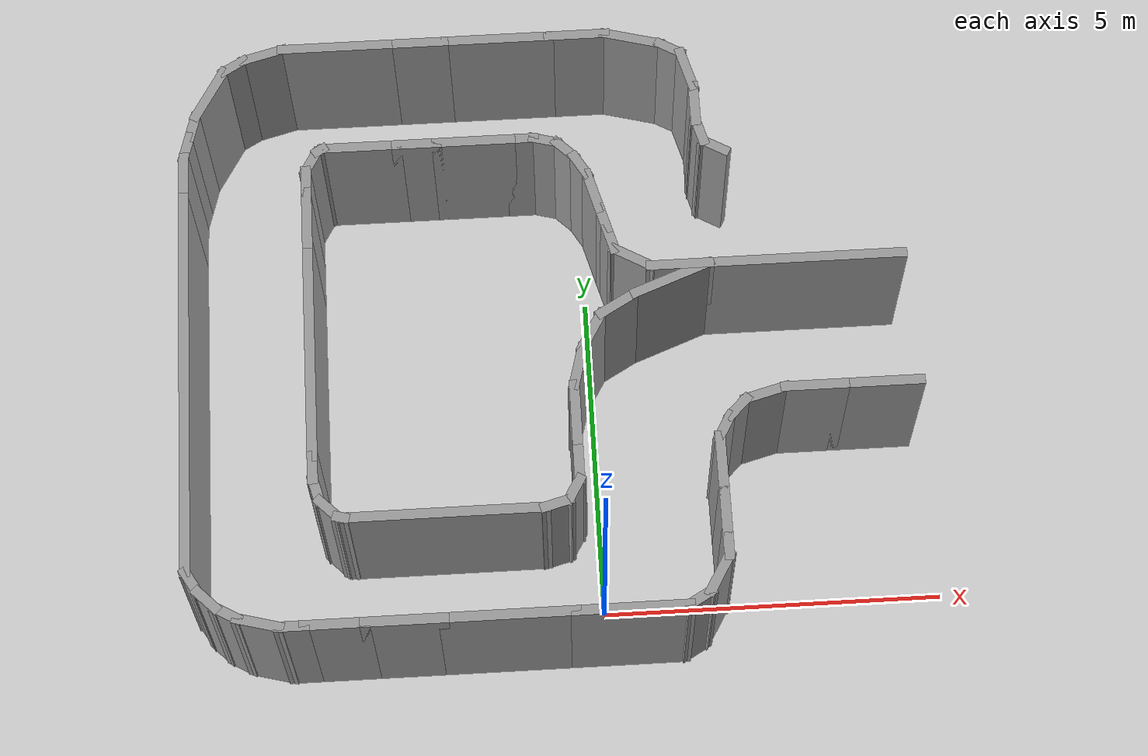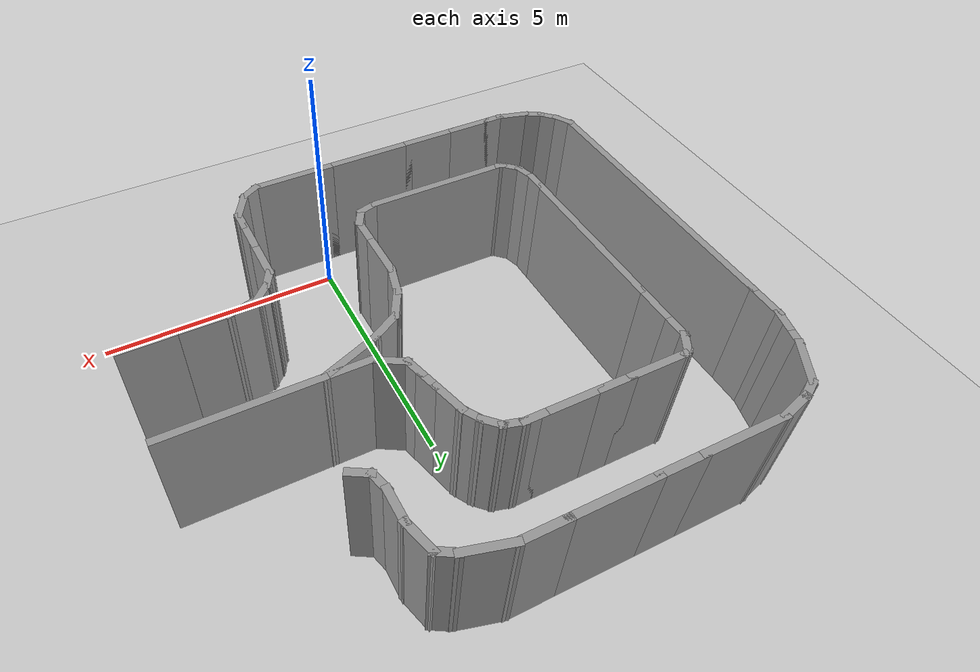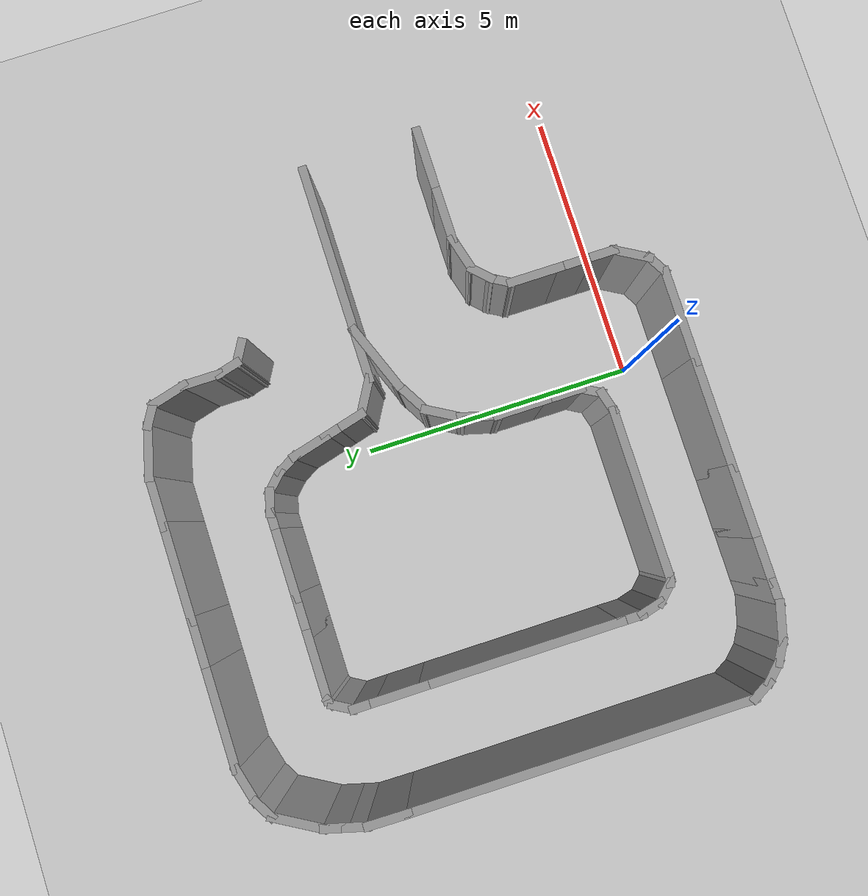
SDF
<sdf version="1.7">
 <world name="default">
  <model name="ground_plane">
   <static>1</static>
   <link name="link">
    <collision name="collision">
     <geometry><plane><normal>0 0 1</normal><size>100 100</size></plane></geometry>
     <surface><friction><ode><mu>100</mu><mu2>50</mu2></ode></friction></surface>
    </collision>
    <visual name="visual">
     <cast_shadows>0</cast_shadows>
     <geometry><plane><normal>0 0 1</normal><size>100 100</size></plane></geometry>
     <material>
      <script><uri>file://media/materials/scripts/gazebo.material</uri><name>Gazebo/Grey</name></script>
     </material>
    </visual>
   </link>
  </model>
  <model name="f1track">
   <pose>5.08169 4.60553 0 0 -0 0</pose>
   <link name="Wall_1">
    <collision name="Wall_1_Collision">
     <geometry><box><size>6 0.15 2.5</size></box></geometry>
     <pose>0 0 1.25 0 -0 0</pose>
    </collision>
    <visual name="Wall_1_Visual">
     <pose>0 0 1.25 0 -0 0</pose>
     <geometry><box><size>6 0.15 2.5</size></box></geometry>
     <material>
      <script><uri>file://media/materials/scripts/gazebo.material</uri><name>Gazebo/Grey</name></script>
      <ambient>1 1 1 1</ambient>
     </material>
     <meta><layer>0</layer></meta>
    </visual>
    <pose>-10.9896 -1.50866 0 0 -0 -1.5708</pose>
   </link>
   <link name="Wall_10">
    <collision name="Wall_10_Collision">
     <geometry><box><size>1.75 0.15 2.5</size></box></geometry>
     <pose>0 0 1.25 0 -0 0</pose>
    </collision>
    <visual name="Wall_10_Visual">
     <pose>0 0 1.25 0 -0 0</pose>
     <geometry><box><size>1.75 0.15 2.5</size></box></geometry>
     <material>
      <script><uri>file://media/materials/scripts/gazebo.material</uri><name>Gazebo/Grey</name></script>
      <ambient>1 1 1 1</ambient>
     </material>
     <meta><layer>0</layer></meta>
    </visual>
    <pose>-4.73447 -5.31455 0 0 -0 0</pose>
   </link>
   <link name="Wall_11">
    <collision name="Wall_11_Collision">
     <geometry><box><size>0.5 0.15 2.5</size></box></geometry>
     <pose>0 0 1.25 0 -0 0</pose>
    </collision>
    <visual name="Wall_11_Visual">
     <pose>0 0 1.25 0 -0 0</pose>
     <geometry><box><size>0.5 0.15 2.5</size></box></geometry>
     <material>
      <script><uri>file://media/materials/scripts/gazebo.material</uri><name>Gazebo/Grey</name></script>
      <ambient>1 1 1 1</ambient>
     </material>
     <meta><layer>0</layer></meta>
    </visual>
    <pose>-3.78292 -5.22705 0 0 -0 0.523599</pose>
   </link>
   <link name="Wall_12">
    <collision name="Wall_12_Collision">
     <geometry><box><size>0.75 0.15 2.5</size></box></geometry>
     <pose>0 0 1.25 0 -0 0</pose>
    </collision>
    <visual name="Wall_12_Visual">
     <pose>0 0 1.25 0 -0 0</pose>
     <geometry><box><size>0.75 0.15 2.5</size></box></geometry>
     <material>
      <script><uri>file://media/materials/scripts/gazebo.material</uri><name>Gazebo/Grey</name></script>
      <ambient>1 1 1 1</ambient>
     </material>
     <meta><layer>0</layer></meta>
    </visual>
    <pose>-3.48137 -4.87974 0 0 -0 1.0472</pose>
   </link>
   <link name="Wall_13">
    <collision name="Wall_13_Collision">
     <geometry><box><size>0.5 0.15 2.5</size></box></geometry>
     <pose>0 0 1.25 0 -0 0</pose>
    </collision>
    <visual name="Wall_13_Visual">
     <pose>0 0 1.25 0 -0 0</pose>
     <geometry><box><size>0.5 0.15 2.5</size></box></geometry>
     <material>
      <script><uri>file://media/materials/scripts/gazebo.material</uri><name>Gazebo/Grey</name></script>
      <ambient>1 1 1 1</ambient>
     </material>
     <meta><layer>0</layer></meta>
    </visual>
    <pose>-3.33137 -4.44493 0 0 -0 1.5708</pose>
   </link>
   <link name="Wall_131">
    <collision name="Wall_131_Collision">
     <geometry><box><size>3.5 0.15 2.5</size></box></geometry>
     <pose>0 0 1.25 0 -0 0</pose>
    </collision>
    <visual name="Wall_131_Visual">
     <pose>0 0 1.25 0 -0 0</pose>
     <geometry><box><size>3.5 0.15 2.5</size></box></geometry>
     <material>
      <script><uri>file://media/materials/scripts/gazebo.material</uri><name>Gazebo/Grey</name></script>
      <ambient>1 1 1 1</ambient>
     </material>
     <meta><layer>0</layer></meta>
    </visual>
    <pose>-9.16786 -1.11959 0 0 -0 -1.5708</pose>
   </link>
   <link name="Wall_132">
    <collision name="Wall_132_Collision">
     <geometry><box><size>0.5 0.15 2.5</size></box></geometry>
     <pose>0 0 1.25 0 -0 0</pose>
    </collision>
    <visual name="Wall_132_Visual">
     <pose>0 0 1.25 0 -0 0</pose>
     <geometry><box><size>0.5 0.15 2.5</size></box></geometry>
     <material>
      <script><uri>file://media/materials/scripts/gazebo.material</uri><name>Gazebo/Grey</name></script>
      <ambient>1 1 1 1</ambient>
     </material>
     <meta><layer>0</layer></meta>
    </visual>
    <pose>-9.16786 -2.96959 0 0 -0 -1.5708</pose>
   </link>
   <link name="Wall_133">
    <collision name="Wall_133_Collision">
     <geometry><box><size>0.5 0.15 2.5</size></box></geometry>
     <pose>0 0 1.25 0 -0 0</pose>
    </collision>
    <visual name="Wall_133_Visual">
     <pose>0 0 1.25 0 -0 0</pose>
     <geometry><box><size>0.5 0.15 2.5</size></box></geometry>
     <material>
      <script><uri>file://media/materials/scripts/gazebo.material</uri><name>Gazebo/Grey</name></script>
      <ambient>1 1 1 1</ambient>
     </material>
     <meta><layer>0</layer></meta>
    </visual>
    <pose>-9.12257 -3.31363 0 0 -0 -1.309</pose>
   </link>
   <link name="Wall_134">
    <collision name="Wall_134_Collision">
     <geometry><box><size>0.5 0.15 2.5</size></box></geometry>
     <pose>0 0 1.25 0 -0 0</pose>
    </collision>
    <visual name="Wall_134_Visual">
     <pose>0 0 1.25 0 -0 0</pose>
     <geometry><box><size>0.5 0.15 2.5</size></box></geometry>
     <material>
      <script><uri>file://media/materials/scripts/gazebo.material</uri><name>Gazebo/Grey</name></script>
      <ambient>1 1 1 1</ambient>
     </material>
     <meta><layer>0</layer></meta>
    </visual>
    <pose>-8.95353 -3.60641 0 0 -0 -0.785398</pose>
   </link>
   <link name="Wall_135">
    <collision name="Wall_135_Collision">
     <geometry><box><size>0.25 0.15 2.5</size></box></geometry>
     <pose>0 0 1.25 0 -0 0</pose>
    </collision>
    <visual name="Wall_135_Visual">
     <pose>0 0 1.25 0 -0 0</pose>
     <geometry><box><size>0.25 0.15 2.5</size></box></geometry>
     <material>
      <script><uri>file://media/materials/scripts/gazebo.material</uri><name>Gazebo/Grey</name></script>
      <ambient>1 1 1 1</ambient>
     </material>
     <meta><layer>0</layer></meta>
    </visual>
    <pose>-8.78149 -3.74309 0 0 -0 -0.261799</pose>
   </link>
   <link name="Wall_136">
    <collision name="Wall_136_Collision">
     <geometry><box><size>3 0.15 2.5</size></box></geometry>
     <pose>0 0 1.25 0 -0 0</pose>
    </collision>
    <visual name="Wall_136_Visual">
     <pose>0 0 1.25 0 -0 0</pose>
     <geometry><box><size>3 0.15 2.5</size></box></geometry>
     <material>
      <script><uri>file://media/materials/scripts/gazebo.material</uri><name>Gazebo/Grey</name></script>
      <ambient>1 1 1 1</ambient>
     </material>
     <meta><layer>0</layer></meta>
    </visual>
    <pose>-7.3082 -3.75603 0 0 -0 0</pose>
   </link>
   <link name="Wall_137">
    <collision name="Wall_137_Collision">
     <geometry><box><size>0.5 0.15 2.5</size></box></geometry>
     <pose>0 0 1.25 0 -0 0</pose>
    </collision>
    <visual name="Wall_137_Visual">
     <pose>0 0 1.25 0 -0 0</pose>
     <geometry><box><size>0.5 0.15 2.5</size></box></geometry>
     <material>
      <script><uri>file://media/materials/scripts/gazebo.material</uri><name>Gazebo/Grey</name></script>
      <ambient>1 1 1 1</ambient>
     </material>
     <meta><layer>0</layer></meta>
    </visual>
    <pose>-5.71416 -3.71074 0 0 -0 0.261799</pose>
   </link>
   <link name="Wall_138">
    <collision name="Wall_138_Collision">
     <geometry><box><size>0.5 0.15 2.5</size></box></geometry>
     <pose>0 0 1.25 0 -0 0</pose>
    </collision>
    <visual name="Wall_138_Visual">
     <pose>0 0 1.25 0 -0 0</pose>
     <geometry><box><size>0.5 0.15 2.5</size></box></geometry>
     <material>
      <script><uri>file://media/materials/scripts/gazebo.material</uri><name>Gazebo/Grey</name></script>
      <ambient>1 1 1 1</ambient>
     </material>
     <meta><layer>0</layer></meta>
    </visual>
    <pose>-5.45762 -3.51389 0 0 -0 1.0472</pose>
   </link>
   <link name="Wall_139">
    <collision name="Wall_139_Collision">
     <geometry><box><size>0.75 0.15 2.5</size></box></geometry>
     <pose>0 0 1.25 0 -0 0</pose>
    </collision>
    <visual name="Wall_139_Visual">
     <pose>0 0 1.25 0 -0 0</pose>
     <geometry><box><size>0.75 0.15 2.5</size></box></geometry>
     <material>
      <script><uri>file://media/materials/scripts/gazebo.material</uri><name>Gazebo/Grey</name></script>
      <ambient>1 1 1 1</ambient>
     </material>
     <meta><layer>0</layer></meta>
    </visual>
    <pose>-5.37012 -3.06234 0 0 -0 1.5708</pose>
   </link>
   <link name="Wall_14">
    <collision name="Wall_14_Collision">
     <geometry><box><size>0.75 0.15 2.5</size></box></geometry>
     <pose>0 0 1.25 0 -0 0</pose>
    </collision>
    <visual name="Wall_14_Visual">
     <pose>0 0 1.25 0 -0 0</pose>
     <geometry><box><size>0.75 0.15 2.5</size></box></geometry>
     <material>
      <script><uri>file://media/materials/scripts/gazebo.material</uri><name>Gazebo/Grey</name></script>
      <ambient>1 1 1 1</ambient>
     </material>
     <meta><layer>0</layer></meta>
    </visual>
    <pose>-3.33137 -3.96993 0 0 -0 1.5708</pose>
   </link>
   <link name="Wall_140">
    <collision name="Wall_140_Collision">
     <geometry><box><size>1 0.15 2.5</size></box></geometry>
     <pose>0 0 1.25 0 -0 0</pose>
    </collision>
    <visual name="Wall_140_Visual">
     <pose>0 0 1.25 0 -0 0</pose>
     <geometry><box><size>1 0.15 2.5</size></box></geometry>
     <material>
      <script><uri>file://media/materials/scripts/gazebo.material</uri><name>Gazebo/Grey</name></script>
      <ambient>1 1 1 1</ambient>
     </material>
     <meta><layer>0</layer></meta>
    </visual>
    <pose>-5.37012 -2.33734 0 0 -0 1.5708</pose>
   </link>
   <link name="Wall_141">
    <collision name="Wall_141_Collision">
     <geometry><box><size>0.75 0.15 2.5</size></box></geometry>
     <pose>0 0 1.25 0 -0 0</pose>
    </collision>
    <visual name="Wall_141_Visual">
     <pose>0 0 1.25 0 -0 0</pose>
     <geometry><box><size>0.75 0.15 2.5</size></box></geometry>
     <material>
      <script><uri>file://media/materials/scripts/gazebo.material</uri><name>Gazebo/Grey</name></script>
      <ambient>1 1 1 1</ambient>
     </material>
     <meta><layer>0</layer></meta>
    </visual>
    <pose>-5.29248 -1.62256 0 0 -0 1.309</pose>
   </link>
   <link name="Wall_142">
    <collision name="Wall_142_Collision">
     <geometry><box><size>0.75 0.15 2.5</size></box></geometry>
     <pose>0 0 1.25 0 -0 0</pose>
    </collision>
    <visual name="Wall_142_Visual">
     <pose>0 0 1.25 0 -0 0</pose>
     <geometry><box><size>0.75 0.15 2.5</size></box></geometry>
     <material>
      <script><uri>file://media/materials/scripts/gazebo.material</uri><name>Gazebo/Grey</name></script>
      <ambient>1 1 1 1</ambient>
     </material>
     <meta><layer>0</layer></meta>
    </visual>
    <pose>-5.06483 -1.07297 0 0 -0 1.0472</pose>
   </link>
   <link name="Wall_143">
    <collision name="Wall_143_Collision">
     <geometry><box><size>0.75 0.15 2.5</size></box></geometry>
     <pose>0 0 1.25 0 -0 0</pose>
    </collision>
    <visual name="Wall_143_Visual">
     <pose>0 0 1.25 0 -0 0</pose>
     <geometry><box><size>0.75 0.15 2.5</size></box></geometry>
     <material>
      <script><uri>file://media/materials/scripts/gazebo.material</uri><name>Gazebo/Grey</name></script>
      <ambient>1 1 1 1</ambient>
     </material>
     <meta><layer>0</layer></meta>
    </visual>
    <pose>-4.65502 -0.663167 0 0 -0 0.523599</pose>
   </link>
   <link name="Wall_146">
    <collision name="Wall_146_Collision">
     <geometry><box><size>1.3344 0.15 2.5</size></box></geometry>
     <pose>0 0 1.25 0 -0 0</pose>
    </collision>
    <visual name="Wall_146_Visual">
     <pose>0 0 1.25 0 -0 0</pose>
     <geometry><box><size>1.3344 0.15 2.5</size></box></geometry>
     <material>
      <script><uri>file://media/materials/scripts/gazebo.material</uri><name>Gazebo/Grey</name></script>
      <ambient>1 1 1 1</ambient>
     </material>
     <meta><layer>0</layer></meta>
    </visual>
    <pose>-3.84242 -0.300767 0 0 -0 0.366835</pose>
   </link>
   <link name="Wall_15">
    <collision name="Wall_15_Collision">
     <geometry><box><size>1 0.15 2.5</size></box></geometry>
     <pose>0 0 1.25 0 -0 0</pose>
    </collision>
    <visual name="Wall_15_Visual">
     <pose>0 0 1.25 0 -0 0</pose>
     <geometry><box><size>1 0.15 2.5</size></box></geometry>
     <material>
      <script><uri>file://media/materials/scripts/gazebo.material</uri><name>Gazebo/Grey</name></script>
      <ambient>1 1 1 1</ambient>
     </material>
     <meta><layer>0</layer></meta>
    </visual>
    <pose>-3.33137 -3.24493 0 0 -0 1.5708</pose>
   </link>
   <link name="Wall_16">
    <collision name="Wall_16_Collision">
     <geometry><box><size>0.5 0.15 2.5</size></box></geometry>
     <pose>0 0 1.25 0 -0 0</pose>
    </collision>
    <visual name="Wall_16_Visual">
     <pose>0 0 1.25 0 -0 0</pose>
     <geometry><box><size>0.5 0.15 2.5</size></box></geometry>
     <material>
      <script><uri>file://media/materials/scripts/gazebo.material</uri><name>Gazebo/Grey</name></script>
      <ambient>1 1 1 1</ambient>
     </material>
     <meta><layer>0</layer></meta>
    </visual>
    <pose>-3.24387 -2.66838 0 0 -0 1.0472</pose>
   </link>
   <link name="Wall_17">
    <collision name="Wall_17_Collision">
     <geometry><box><size>0.5 0.15 2.5</size></box></geometry>
     <pose>0 0 1.25 0 -0 0</pose>
    </collision>
    <visual name="Wall_17_Visual">
     <pose>0 0 1.25 0 -0 0</pose>
     <geometry><box><size>0.5 0.15 2.5</size></box></geometry>
     <material>
      <script><uri>file://media/materials/scripts/gazebo.material</uri><name>Gazebo/Grey</name></script>
      <ambient>1 1 1 1</ambient>
     </material>
     <meta><layer>0</layer></meta>
    </visual>
    <pose>-3.03262 -2.39308 0 0 -0 0.785398</pose>
   </link>
   <link name="Wall_18">
    <collision name="Wall_18_Collision">
     <geometry><box><size>0.75 0.15 2.5</size></box></geometry>
     <pose>0 0 1.25 0 -0 0</pose>
    </collision>
    <visual name="Wall_18_Visual">
     <pose>0 0 1.25 0 -0 0</pose>
     <geometry><box><size>0.75 0.15 2.5</size></box></geometry>
     <material>
      <script><uri>file://media/materials/scripts/gazebo.material</uri><name>Gazebo/Grey</name></script>
      <ambient>1 1 1 1</ambient>
     </material>
     <meta><layer>0</layer></meta>
    </visual>
    <pose>-2.6191 -2.19169 0 0 -0 0.261799</pose>
   </link>
   <link name="Wall_19">
    <collision name="Wall_19_Collision">
     <geometry><box><size>1 0.15 2.5</size></box></geometry>
     <pose>0 0 1.25 0 -0 0</pose>
    </collision>
    <visual name="Wall_19_Visual">
     <pose>0 0 1.25 0 -0 0</pose>
     <geometry><box><size>1 0.15 2.5</size></box></geometry>
     <material>
      <script><uri>file://media/materials/scripts/gazebo.material</uri><name>Gazebo/Grey</name></script>
      <ambient>1 1 1 1</ambient>
     </material>
     <meta><layer>0</layer></meta>
    </visual>
    <pose>-1.90432 -2.11404 0 0 -0 0</pose>
   </link>
   <link name="Wall_2">
    <collision name="Wall_2_Collision">
     <geometry><box><size>0.5 0.15 2.5</size></box></geometry>
     <pose>0 0 1.25 0 -0 0</pose>
    </collision>
    <visual name="Wall_2_Visual">
     <pose>0 0 1.25 0 -0 0</pose>
     <geometry><box><size>0.5 0.15 2.5</size></box></geometry>
     <material>
      <script><uri>file://media/materials/scripts/gazebo.material</uri><name>Gazebo/Grey</name></script>
      <ambient>1 1 1 1</ambient>
     </material>
     <meta><layer>0</layer></meta>
    </visual>
    <pose>-10.9021 -4.58521 0 0 -0 -1.0472</pose>
   </link>
   <link name="Wall_20">
    <collision name="Wall_20_Collision">
     <geometry><box><size>1.25 0.15 2.5</size></box></geometry>
     <pose>0 0 1.25 0 -0 0</pose>
    </collision>
    <visual name="Wall_20_Visual">
     <pose>0 0 1.25 0 -0 0</pose>
     <geometry><box><size>1.25 0.15 2.5</size></box></geometry>
     <material>
      <script><uri>file://media/materials/scripts/gazebo.material</uri><name>Gazebo/Grey</name></script>
      <ambient>1 1 1 1</ambient>
     </material>
     <meta><layer>0</layer></meta>
    </visual>
    <pose>-0.929323 -2.11404 0 0 -0 0</pose>
   </link>
   <link name="Wall_3">
    <collision name="Wall_3_Collision">
     <geometry><box><size>0.5 0.15 2.5</size></box></geometry>
     <pose>0 0 1.25 0 -0 0</pose>
    </collision>
    <visual name="Wall_3_Visual">
     <pose>0 0 1.25 0 -0 0</pose>
     <geometry><box><size>0.5 0.15 2.5</size></box></geometry>
     <material>
      <script><uri>file://media/materials/scripts/gazebo.material</uri><name>Gazebo/Grey</name></script>
      <ambient>1 1 1 1</ambient>
     </material>
     <meta><layer>0</layer></meta>
    </visual>
    <pose>-10.6909 -4.86051 0 0 -0 -0.785398</pose>
   </link>
   <link name="Wall_4">
    <collision name="Wall_4_Collision">
     <geometry><box><size>0.5 0.15 2.5</size></box></geometry>
     <pose>0 0 1.25 0 -0 0</pose>
    </collision>
    <visual name="Wall_4_Visual">
     <pose>0 0 1.25 0 -0 0</pose>
     <geometry><box><size>0.5 0.15 2.5</size></box></geometry>
     <material>
      <script><uri>file://media/materials/scripts/gazebo.material</uri><name>Gazebo/Grey</name></script>
      <ambient>1 1 1 1</ambient>
     </material>
     <meta><layer>0</layer></meta>
    </visual>
    <pose>-10.4156 -5.07176 0 0 -0 -0.523599</pose>
   </link>
   <link name="Wall_5">
    <collision name="Wall_5_Collision">
     <geometry><box><size>0.75 0.15 2.5</size></box></geometry>
     <pose>0 0 1.25 0 -0 0</pose>
    </collision>
    <visual name="Wall_5_Visual">
     <pose>0 0 1.25 0 -0 0</pose>
     <geometry><box><size>0.75 0.15 2.5</size></box></geometry>
     <material>
      <script><uri>file://media/materials/scripts/gazebo.material</uri><name>Gazebo/Grey</name></script>
      <ambient>1 1 1 1</ambient>
     </material>
     <meta><layer>0</layer></meta>
    </visual>
    <pose>-9.97425 -5.2369 0 0 -0 -0.261799</pose>
   </link>
   <link name="Wall_59">
    <collision name="Wall_59_Collision">
     <geometry><box><size>0.5 0.15 2.5</size></box></geometry>
     <pose>0 0 1.25 0 -0 0</pose>
    </collision>
    <visual name="Wall_59_Visual">
     <pose>0 0 1.25 0 -0 0</pose>
     <geometry><box><size>0.5 0.15 2.5</size></box></geometry>
     <material>
      <script><uri>file://media/materials/scripts/gazebo.material</uri><name>Gazebo/Grey</name></script>
      <ambient>1 1 1 1</ambient>
     </material>
     <meta><layer>0</layer></meta>
    </visual>
    <pose>-3.06861 1.82575 0 0 -0 2.61799</pose>
   </link>
   <link name="Wall_6">
    <collision name="Wall_6_Collision">
     <geometry><box><size>0.5 0.15 2.5</size></box></geometry>
     <pose>0 0 1.25 0 -0 0</pose>
    </collision>
    <visual name="Wall_6_Visual">
     <pose>0 0 1.25 0 -0 0</pose>
     <geometry><box><size>0.5 0.15 2.5</size></box></geometry>
     <material>
      <script><uri>file://media/materials/scripts/gazebo.material</uri><name>Gazebo/Grey</name></script>
      <ambient>1 1 1 1</ambient>
     </material>
     <meta><layer>0</layer></meta>
    </visual>
    <pose>-9.50948 -5.31455 0 0 -0 0</pose>
   </link>
   <link name="Wall_60">
    <collision name="Wall_60_Collision">
     <geometry><box><size>0.5 0.15 2.5</size></box></geometry>
     <pose>0 0 1.25 0 -0 0</pose>
    </collision>
    <visual name="Wall_60_Visual">
     <pose>0 0 1.25 0 -0 0</pose>
     <geometry><box><size>0.5 0.15 2.5</size></box></geometry>
     <material>
      <script><uri>file://media/materials/scripts/gazebo.material</uri><name>Gazebo/Grey</name></script>
      <ambient>1 1 1 1</ambient>
     </material>
     <meta><layer>0</layer></meta>
    </visual>
    <pose>-3.26546 2.08229 0 0 -0 1.8326</pose>
   </link>
   <link name="Wall_61">
    <collision name="Wall_61_Collision">
     <geometry><box><size>0.75 0.15 2.5</size></box></geometry>
     <pose>0 0 1.25 0 -0 0</pose>
    </collision>
    <visual name="Wall_61_Visual">
     <pose>0 0 1.25 0 -0 0</pose>
     <geometry><box><size>0.75 0.15 2.5</size></box></geometry>
     <material>
      <script><uri>file://media/materials/scripts/gazebo.material</uri><name>Gazebo/Grey</name></script>
      <ambient>1 1 1 1</ambient>
     </material>
     <meta><layer>0</layer></meta>
    </visual>
    <pose>-3.31075 2.55132 0 0 -0 1.5708</pose>
   </link>
   <link name="Wall_62">
    <collision name="Wall_62_Collision">
     <geometry><box><size>0.75 0.15 2.5</size></box></geometry>
     <pose>0 0 1.25 0 -0 0</pose>
    </collision>
    <visual name="Wall_62_Visual">
     <pose>0 0 1.25 0 -0 0</pose>
     <geometry><box><size>0.75 0.15 2.5</size></box></geometry>
     <material>
      <script><uri>file://media/materials/scripts/gazebo.material</uri><name>Gazebo/Grey</name></script>
      <ambient>1 1 1 1</ambient>
     </material>
     <meta><layer>0</layer></meta>
    </visual>
    <pose>-3.3884 3.1411 0 0 -0 1.8326</pose>
   </link>
   <link name="Wall_64">
    <collision name="Wall_64_Collision">
     <geometry><box><size>0.5 0.15 2.5</size></box></geometry>
     <pose>0 0 1.25 0 -0 0</pose>
    </collision>
    <visual name="Wall_64_Visual">
     <pose>0 0 1.25 0 -0 0</pose>
     <geometry><box><size>0.5 0.15 2.5</size></box></geometry>
     <material>
      <script><uri>file://media/materials/scripts/gazebo.material</uri><name>Gazebo/Grey</name></script>
      <ambient>1 1 1 1</ambient>
     </material>
     <meta><layer>0</layer></meta>
    </visual>
    <pose>-3.6176 3.51838 0 0 -0 2.61799</pose>
   </link>
   <link name="Wall_65">
    <collision name="Wall_65_Collision">
     <geometry><box><size>1 0.15 2.5</size></box></geometry>
     <pose>0 0 1.25 0 -0 0</pose>
    </collision>
    <visual name="Wall_65_Visual">
     <pose>0 0 1.25 0 -0 0</pose>
     <geometry><box><size>1 0.15 2.5</size></box></geometry>
     <material>
      <script><uri>file://media/materials/scripts/gazebo.material</uri><name>Gazebo/Grey</name></script>
      <ambient>1 1 1 1</ambient>
     </material>
     <meta><layer>0</layer></meta>
    </visual>
    <pose>-4.17967 3.71588 0 0 -0 2.87979</pose>
   </link>
   <link name="Wall_66">
    <collision name="Wall_66_Collision">
     <geometry><box><size>1 0.15 2.5</size></box></geometry>
     <pose>0 0 1.25 0 -0 0</pose>
    </collision>
    <visual name="Wall_66_Visual">
     <pose>0 0 1.25 0 -0 0</pose>
     <geometry><box><size>1 0.15 2.5</size></box></geometry>
     <material>
      <script><uri>file://media/materials/scripts/gazebo.material</uri><name>Gazebo/Grey</name></script>
      <ambient>1 1 1 1</ambient>
     </material>
     <meta><layer>0</layer></meta>
    </visual>
    <pose>-5.01519 3.82587 0 0 -0 3.14159</pose>
   </link>
   <link name="Wall_67">
    <collision name="Wall_67_Collision">
     <geometry><box><size>1.75 0.15 2.5</size></box></geometry>
     <pose>0 0 1.25 0 -0 0</pose>
    </collision>
    <visual name="Wall_67_Visual">
     <pose>0 0 1.25 0 -0 0</pose>
     <geometry><box><size>1.75 0.15 2.5</size></box></geometry>
     <material>
      <script><uri>file://media/materials/scripts/gazebo.material</uri><name>Gazebo/Grey</name></script>
      <ambient>1 1 1 1</ambient>
     </material>
     <meta><layer>0</layer></meta>
    </visual>
    <pose>-6.24019 3.82587 0 0 -0 3.14159</pose>
   </link>
   <link name="Wall_68">
    <collision name="Wall_68_Collision">
     <geometry><box><size>1 0.15 2.5</size></box></geometry>
     <pose>0 0 1.25 0 -0 0</pose>
    </collision>
    <visual name="Wall_68_Visual">
     <pose>0 0 1.25 0 -0 0</pose>
     <geometry><box><size>1 0.15 2.5</size></box></geometry>
     <material>
      <script><uri>file://media/materials/scripts/gazebo.material</uri><name>Gazebo/Grey</name></script>
      <ambient>1 1 1 1</ambient>
     </material>
     <meta><layer>0</layer></meta>
    </visual>
    <pose>-7.46519 3.82587 0 0 -0 3.14159</pose>
   </link>
   <link name="Wall_69">
    <collision name="Wall_69_Collision">
     <geometry><box><size>1.75 0.15 2.5</size></box></geometry>
     <pose>0 0 1.25 0 -0 0</pose>
    </collision>
    <visual name="Wall_69_Visual">
     <pose>0 0 1.25 0 -0 0</pose>
     <geometry><box><size>1.75 0.15 2.5</size></box></geometry>
     <material>
      <script><uri>file://media/materials/scripts/gazebo.material</uri><name>Gazebo/Grey</name></script>
      <ambient>1 1 1 1</ambient>
     </material>
     <meta><layer>0</layer></meta>
    </visual>
    <pose>-8.69019 3.82587 0 0 -0 3.14159</pose>
   </link>
   <link name="Wall_7">
    <collision name="Wall_7_Collision">
     <geometry><box><size>1 0.15 2.5</size></box></geometry>
     <pose>0 0 1.25 0 -0 0</pose>
    </collision>
    <visual name="Wall_7_Visual">
     <pose>0 0 1.25 0 -0 0</pose>
     <geometry><box><size>1 0.15 2.5</size></box></geometry>
     <material>
      <script><uri>file://media/materials/scripts/gazebo.material</uri><name>Gazebo/Grey</name></script>
      <ambient>1 1 1 1</ambient>
     </material>
     <meta><layer>0</layer></meta>
    </visual>
    <pose>-8.90948 -5.31455 0 0 -0 0</pose>
   </link>
   <link name="Wall_70">
    <collision name="Wall_70_Collision">
     <geometry><box><size>0.75 0.15 2.5</size></box></geometry>
     <pose>0 0 1.25 0 -0 0</pose>
    </collision>
    <visual name="Wall_70_Visual">
     <pose>0 0 1.25 0 -0 0</pose>
     <geometry><box><size>0.75 0.15 2.5</size></box></geometry>
     <material>
      <script><uri>file://media/materials/scripts/gazebo.material</uri><name>Gazebo/Grey</name></script>
      <ambient>1 1 1 1</ambient>
     </material>
     <meta><layer>0</layer></meta>
    </visual>
    <pose>-9.77997 3.74823 0 0 -0 -2.87979</pose>
   </link>
   <link name="Wall_71">
    <collision name="Wall_71_Collision">
     <geometry><box><size>0.5 0.15 2.5</size></box></geometry>
     <pose>0 0 1.25 0 -0 0</pose>
    </collision>
    <visual name="Wall_71_Visual">
     <pose>0 0 1.25 0 -0 0</pose>
     <geometry><box><size>0.5 0.15 2.5</size></box></geometry>
     <material>
      <script><uri>file://media/materials/scripts/gazebo.material</uri><name>Gazebo/Grey</name></script>
      <ambient>1 1 1 1</ambient>
     </material>
     <meta><layer>0</layer></meta>
    </visual>
    <pose>-10.2213 3.58308 0 0 -0 -2.61799</pose>
   </link>
   <link name="Wall_72">
    <collision name="Wall_72_Collision">
     <geometry><box><size>1 0.15 2.5</size></box></geometry>
     <pose>0 0 1.25 0 -0 0</pose>
    </collision>
    <visual name="Wall_72_Visual">
     <pose>0 0 1.25 0 -0 0</pose>
     <geometry><box><size>1 0.15 2.5</size></box></geometry>
     <material>
      <script><uri>file://media/materials/scripts/gazebo.material</uri><name>Gazebo/Grey</name></script>
      <ambient>1 1 1 1</ambient>
     </material>
     <meta><layer>0</layer></meta>
    </visual>
    <pose>-10.5854 3.12752 0 0 -0 -2.0944</pose>
   </link>
   <link name="Wall_73">
    <collision name="Wall_73_Collision">
     <geometry><box><size>0.5 0.15 2.5</size></box></geometry>
     <pose>0 0 1.25 0 -0 0</pose>
    </collision>
    <visual name="Wall_73_Visual">
     <pose>0 0 1.25 0 -0 0</pose>
     <geometry><box><size>0.5 0.15 2.5</size></box></geometry>
     <material>
      <script><uri>file://media/materials/scripts/gazebo.material</uri><name>Gazebo/Grey</name></script>
      <ambient>1 1 1 1</ambient>
     </material>
     <meta><layer>0</layer></meta>
    </visual>
    <pose>-10.8431 2.59042 0 0 -0 -1.8326</pose>
   </link>
   <link name="Wall_74">
    <collision name="Wall_74_Collision">
     <geometry><box><size>0.5 0.15 2.5</size></box></geometry>
     <pose>0 0 1.25 0 -0 0</pose>
    </collision>
    <visual name="Wall_74_Visual">
     <pose>0 0 1.25 0 -0 0</pose>
     <geometry><box><size>0.5 0.15 2.5</size></box></geometry>
     <material>
      <script><uri>file://media/materials/scripts/gazebo.material</uri><name>Gazebo/Grey</name></script>
      <ambient>1 1 1 1</ambient>
     </material>
     <meta><layer>0</layer></meta>
    </visual>
    <pose>-10.9337 2.25235 0 0 -0 -1.8326</pose>
   </link>
   <link name="Wall_75">
    <collision name="Wall_75_Collision">
     <geometry><box><size>0.817056 0.15 2.5</size></box></geometry>
     <pose>0 0 1.25 0 -0 0</pose>
    </collision>
    <visual name="Wall_75_Visual">
     <pose>0 0 1.25 0 -0 0</pose>
     <geometry><box><size>0.817056 0.15 2.5</size></box></geometry>
     <material>
      <script><uri>file://media/materials/scripts/gazebo.material</uri><name>Gazebo/Grey</name></script>
      <ambient>1 1 1 1</ambient>
     </material>
     <meta><layer>0</layer></meta>
    </visual>
    <pose>-10.9843 1.74983 0 0 -0 -1.58669</pose>
   </link>
   <link name="Wall_78">
    <collision name="Wall_78_Collision">
     <geometry><box><size>1 0.15 2.5</size></box></geometry>
     <pose>0 0 1.25 0 -0 0</pose>
    </collision>
    <visual name="Wall_78_Visual">
     <pose>0 0 1.25 0 -0 0</pose>
     <geometry><box><size>1 0.15 2.5</size></box></geometry>
     <material>
      <script><uri>file://media/materials/scripts/gazebo.material</uri><name>Gazebo/Grey</name></script>
      <ambient>1 1 1 1</ambient>
     </material>
     <meta><layer>0</layer></meta>
    </visual>
    <pose>-9.16786 0.98041 0 0 -0 1.5708</pose>
   </link>
   <link name="Wall_79">
    <collision name="Wall_79_Collision">
     <geometry><box><size>0.5 0.15 2.5</size></box></geometry>
     <pose>0 0 1.25 0 -0 0</pose>
    </collision>
    <visual name="Wall_79_Visual">
     <pose>0 0 1.25 0 -0 0</pose>
     <geometry><box><size>0.5 0.15 2.5</size></box></geometry>
     <material>
      <script><uri>file://media/materials/scripts/gazebo.material</uri><name>Gazebo/Grey</name></script>
      <ambient>1 1 1 1</ambient>
     </material>
     <meta><layer>0</layer></meta>
    </visual>
    <pose>-9.16786 1.58041 0 0 -0 1.5708</pose>
   </link>
   <link name="Wall_8">
    <collision name="Wall_8_Collision">
     <geometry><box><size>1.25 0.15 2.5</size></box></geometry>
     <pose>0 0 1.25 0 -0 0</pose>
    </collision>
    <visual name="Wall_8_Visual">
     <pose>0 0 1.25 0 -0 0</pose>
     <geometry><box><size>1.25 0.15 2.5</size></box></geometry>
     <material>
      <script><uri>file://media/materials/scripts/gazebo.material</uri><name>Gazebo/Grey</name></script>
      <ambient>1 1 1 1</ambient>
     </material>
     <meta><layer>0</layer></meta>
    </visual>
    <pose>-7.93447 -5.31455 0 0 -0 0</pose>
   </link>
   <link name="Wall_80">
    <collision name="Wall_80_Collision">
     <geometry><box><size>0.5 0.15 2.5</size></box></geometry>
     <pose>0 0 1.25 0 -0 0</pose>
    </collision>
    <visual name="Wall_80_Visual">
     <pose>0 0 1.25 0 -0 0</pose>
     <geometry><box><size>0.5 0.15 2.5</size></box></geometry>
     <material>
      <script><uri>file://media/materials/scripts/gazebo.material</uri><name>Gazebo/Grey</name></script>
      <ambient>1 1 1 1</ambient>
     </material>
     <meta><layer>0</layer></meta>
    </visual>
    <pose>-9.08036 1.90697 0 0 -0 1.0472</pose>
   </link>
   <link name="Wall_81">
    <collision name="Wall_81_Collision">
     <geometry><box><size>0.25 0.15 2.5</size></box></geometry>
     <pose>0 0 1.25 0 -0 0</pose>
    </collision>
    <visual name="Wall_81_Visual">
     <pose>0 0 1.25 0 -0 0</pose>
     <geometry><box><size>0.25 0.15 2.5</size></box></geometry>
     <material>
      <script><uri>file://media/materials/scripts/gazebo.material</uri><name>Gazebo/Grey</name></script>
      <ambient>1 1 1 1</ambient>
     </material>
     <meta><layer>0</layer></meta>
    </visual>
    <pose>-8.94956 2.08352 0 0 -0 0.523599</pose>
   </link>
   <link name="Wall_82">
    <collision name="Wall_82_Collision">
     <geometry><box><size>1.25 0.15 2.5</size></box></geometry>
     <pose>0 0 1.25 0 -0 0</pose>
    </collision>
    <visual name="Wall_82_Visual">
     <pose>0 0 1.25 0 -0 0</pose>
     <geometry><box><size>1.25 0.15 2.5</size></box></geometry>
     <material>
      <script><uri>file://media/materials/scripts/gazebo.material</uri><name>Gazebo/Grey</name></script>
      <ambient>1 1 1 1</ambient>
     </material>
     <meta><layer>0</layer></meta>
    </visual>
    <pose>-8.35626 2.10852 0 0 -0 0</pose>
   </link>
   <link name="Wall_83">
    <collision name="Wall_83_Collision">
     <geometry><box><size>0.75 0.15 2.5</size></box></geometry>
     <pose>0 0 1.25 0 -0 0</pose>
    </collision>
    <visual name="Wall_83_Visual">
     <pose>0 0 1.25 0 -0 0</pose>
     <geometry><box><size>0.75 0.15 2.5</size></box></geometry>
     <material>
      <script><uri>file://media/materials/scripts/gazebo.material</uri><name>Gazebo/Grey</name></script>
      <ambient>1 1 1 1</ambient>
     </material>
     <meta><layer>0</layer></meta>
    </visual>
    <pose>-7.50626 2.10852 0 0 -0 0</pose>
   </link>
   <link name="Wall_84">
    <collision name="Wall_84_Collision">
     <geometry><box><size>1.25 0.15 2.5</size></box></geometry>
     <pose>0 0 1.25 0 -0 0</pose>
    </collision>
    <visual name="Wall_84_Visual">
     <pose>0 0 1.25 0 -0 0</pose>
     <geometry><box><size>1.25 0.15 2.5</size></box></geometry>
     <material>
      <script><uri>file://media/materials/scripts/gazebo.material</uri><name>Gazebo/Grey</name></script>
      <ambient>1 1 1 1</ambient>
     </material>
     <meta><layer>0</layer></meta>
    </visual>
    <pose>-6.65626 2.10852 0 0 -0 0</pose>
   </link>
   <link name="Wall_85">
    <collision name="Wall_85_Collision">
     <geometry><box><size>0.5 0.15 2.5</size></box></geometry>
     <pose>0 0 1.25 0 -0 0</pose>
    </collision>
    <visual name="Wall_85_Visual">
     <pose>0 0 1.25 0 -0 0</pose>
     <geometry><box><size>0.5 0.15 2.5</size></box></geometry>
     <material>
      <script><uri>file://media/materials/scripts/gazebo.material</uri><name>Gazebo/Grey</name></script>
      <ambient>1 1 1 1</ambient>
     </material>
     <meta><layer>0</layer></meta>
    </visual>
    <pose>-5.93126 2.10852 0 0 -0 0</pose>
   </link>
   <link name="Wall_86">
    <collision name="Wall_86_Collision">
     <geometry><box><size>0.5 0.15 2.5</size></box></geometry>
     <pose>0 0 1.25 0 -0 0</pose>
    </collision>
    <visual name="Wall_86_Visual">
     <pose>0 0 1.25 0 -0 0</pose>
     <geometry><box><size>0.5 0.15 2.5</size></box></geometry>
     <material>
      <script><uri>file://media/materials/scripts/gazebo.material</uri><name>Gazebo/Grey</name></script>
      <ambient>1 1 1 1</ambient>
     </material>
     <meta><layer>0</layer></meta>
    </visual>
    <pose>-5.58722 2.06323 0 0 -0 -0.261799</pose>
   </link>
   <link name="Wall_87">
    <collision name="Wall_87_Collision">
     <geometry><box><size>0.5 0.15 2.5</size></box></geometry>
     <pose>0 0 1.25 0 -0 0</pose>
    </collision>
    <visual name="Wall_87_Visual">
     <pose>0 0 1.25 0 -0 0</pose>
     <geometry><box><size>0.5 0.15 2.5</size></box></geometry>
     <material>
      <script><uri>file://media/materials/scripts/gazebo.material</uri><name>Gazebo/Grey</name></script>
      <ambient>1 1 1 1</ambient>
     </material>
     <meta><layer>0</layer></meta>
    </visual>
    <pose>-5.29444 1.89419 0 0 -0 -0.785398</pose>
   </link>
   <link name="Wall_88">
    <collision name="Wall_88_Collision">
     <geometry><box><size>0.5 0.15 2.5</size></box></geometry>
     <pose>0 0 1.25 0 -0 0</pose>
    </collision>
    <visual name="Wall_88_Visual">
     <pose>0 0 1.25 0 -0 0</pose>
     <geometry><box><size>0.5 0.15 2.5</size></box></geometry>
     <material>
      <script><uri>file://media/materials/scripts/gazebo.material</uri><name>Gazebo/Grey</name></script>
      <ambient>1 1 1 1</ambient>
     </material>
     <meta><layer>0</layer></meta>
    </visual>
    <pose>-5.0832 1.61889 0 0 -0 -1.0472</pose>
   </link>
   <link name="Wall_89">
    <collision name="Wall_89_Collision">
     <geometry><box><size>0.75 0.15 2.5</size></box></geometry>
     <pose>0 0 1.25 0 -0 0</pose>
    </collision>
    <visual name="Wall_89_Visual">
     <pose>0 0 1.25 0 -0 0</pose>
     <geometry><box><size>0.75 0.15 2.5</size></box></geometry>
     <material>
      <script><uri>file://media/materials/scripts/gazebo.material</uri><name>Gazebo/Grey</name></script>
      <ambient>1 1 1 1</ambient>
     </material>
     <meta><layer>0</layer></meta>
    </visual>
    <pose>-4.91805 1.17756 0 0 -0 -1.309</pose>
   </link>
   <link name="Wall_9">
    <collision name="Wall_9_Collision">
     <geometry><box><size>2 0.15 2.5</size></box></geometry>
     <pose>0 0 1.25 0 -0 0</pose>
    </collision>
    <visual name="Wall_9_Visual">
     <pose>0 0 1.25 0 -0 0</pose>
     <geometry><box><size>2 0.15 2.5</size></box></geometry>
     <material>
      <script><uri>file://media/materials/scripts/gazebo.material</uri><name>Gazebo/Grey</name></script>
      <ambient>1 1 1 1</ambient>
     </material>
     <meta><layer>0</layer></meta>
    </visual>
    <pose>-6.45948 -5.31455 0 0 -0 0</pose>
   </link>
   <link name="Wall_90">
    <collision name="Wall_90_Collision">
     <geometry><box><size>0.5 0.15 2.5</size></box></geometry>
     <pose>0 0 1.25 0 -0 0</pose>
    </collision>
    <visual name="Wall_90_Visual">
     <pose>0 0 1.25 0 -0 0</pose>
     <geometry><box><size>0.5 0.15 2.5</size></box></geometry>
     <material>
      <script><uri>file://media/materials/scripts/gazebo.material</uri><name>Gazebo/Grey</name></script>
      <ambient>1 1 1 1</ambient>
     </material>
     <meta><layer>0</layer></meta>
    </visual>
    <pose>-4.79511 0.718744 0 0 -0 -1.309</pose>
   </link>
   <link name="Wall_91">
    <collision name="Wall_91_Collision">
     <geometry><box><size>0.5 0.15 2.5</size></box></geometry>
     <pose>0 0 1.25 0 -0 0</pose>
    </collision>
    <visual name="Wall_91_Visual">
     <pose>0 0 1.25 0 -0 0</pose>
     <geometry><box><size>0.5 0.15 2.5</size></box></geometry>
     <material>
      <script><uri>file://media/materials/scripts/gazebo.material</uri><name>Gazebo/Grey</name></script>
      <ambient>1 1 1 1</ambient>
     </material>
     <meta><layer>0</layer></meta>
    </visual>
    <pose>-4.70453 0.38067 0 0 -0 -1.309</pose>
   </link>
   <link name="Wall_92">
    <collision name="Wall_92_Collision">
     <geometry><box><size>0.75 0.15 2.5</size></box></geometry>
     <pose>0 0 1.25 0 -0 0</pose>
    </collision>
    <visual name="Wall_92_Visual">
     <pose>0 0 1.25 0 -0 0</pose>
     <geometry><box><size>0.75 0.15 2.5</size></box></geometry>
     <material>
      <script><uri>file://media/materials/scripts/gazebo.material</uri><name>Gazebo/Grey</name></script>
      <ambient>1 1 1 1</ambient>
     </material>
     <meta><layer>0</layer></meta>
    </visual>
    <pose>-4.39943 0.061632 0 0 -0 -0.523599</pose>
   </link>
   <link name="Wall_93">
    <collision name="Wall_93_Collision">
     <geometry><box><size>1 0.15 2.5</size></box></geometry>
     <pose>0 0 1.25 0 -0 0</pose>
    </collision>
    <visual name="Wall_93_Visual">
     <pose>0 0 1.25 0 -0 0</pose>
     <geometry><box><size>1 0.15 2.5</size></box></geometry>
     <material>
      <script><uri>file://media/materials/scripts/gazebo.material</uri><name>Gazebo/Grey</name></script>
      <ambient>1 1 1 1</ambient>
     </material>
     <meta><layer>0</layer></meta>
    </visual>
    <pose>-3.71462 -0.088367 0 0 -0 0</pose>
   </link>
   <link name="Wall_94">
    <collision name="Wall_94_Collision">
     <geometry><box><size>3 0.15 2.5</size></box></geometry>
     <pose>0 0 1.25 0 -0 0</pose>
    </collision>
    <visual name="Wall_94_Visual">
     <pose>0 0 1.25 0 -0 0</pose>
     <geometry><box><size>3 0.15 2.5</size></box></geometry>
     <material>
      <script><uri>file://media/materials/scripts/gazebo.material</uri><name>Gazebo/Grey</name></script>
      <ambient>1 1 1 1</ambient>
     </material>
     <meta><layer>0</layer></meta>
    </visual>
    <pose>-1.86462 -0.088367 0 0 -0 0</pose>
   </link>
   <static>1</static>
  </model>
 </world>
</sdf>
